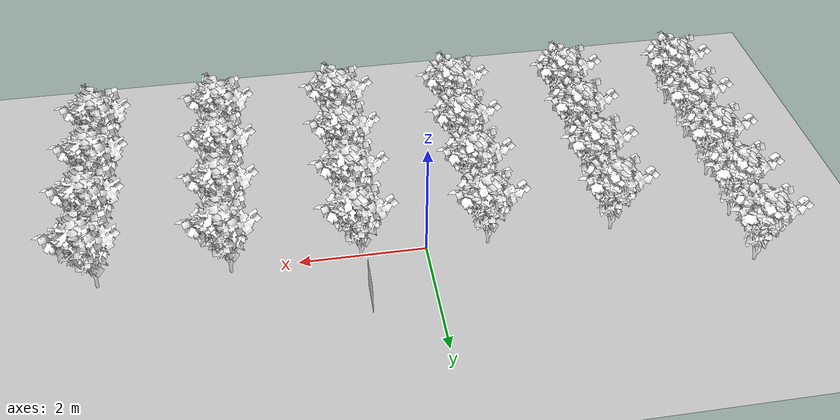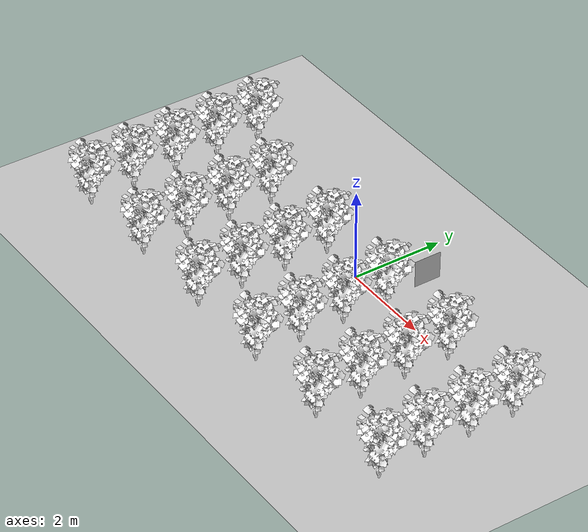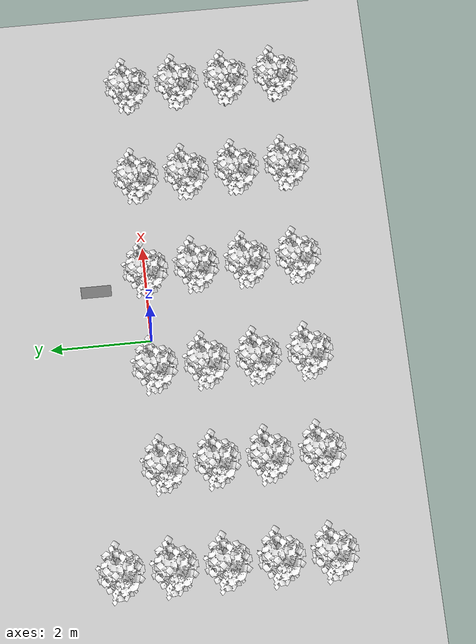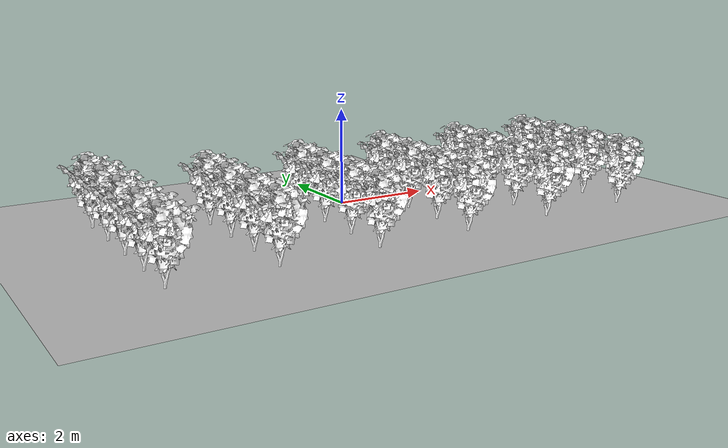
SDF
<sdf version="1.7">
 <world name="default">
  <include><uri>model://sun</uri></include>
  <model name="tree_0">
   <static>true</static>
   <link name="link">
    <visual name="trunk">
     <geometry><mesh><uri>model://meshes/Tree_1_Trunk.dae</uri></mesh></geometry>
     <material>
      <script>
       <uri>model://materials/scripts/</uri>
       <uri>model://materials/textures/</uri>
       <name>Vine/Bark</name>
      </script>
     </material>
    </visual>
    <visual name="leafa">
     <geometry><mesh><uri>model://meshes/Tree_1_Leaf_1.dae</uri></mesh></geometry>
     <material>
      <script>
       <uri>model://materials/scripts/</uri>
       <uri>model://materials/textures/</uri>
       <name>Vine/Leafa</name>
      </script>
     </material>
    </visual>
    <visual name="leafb">
     <geometry><mesh><uri>model://meshes/Tree_1_Leaf_2.dae</uri></mesh></geometry>
     <material>
      <script>
       <uri>model://materials/scripts/</uri>
       <uri>model://materials/textures/</uri>
       <name>Vine/Leafb</name>
      </script>
     </material>
    </visual>
    <visual name="leafc">
     <geometry><mesh><uri>model://meshes/Tree_1_Leaf_3.dae</uri></mesh></geometry>
     <material>
      <script>
       <uri>model://materials/scripts/</uri>
       <uri>model://materials/textures/</uri>
       <name>Vine/Leafc</name>
      </script>
     </material>
    </visual>
   </link>
   <pose>-5 -3 -0.3 0 0 0</pose>
  </model>
  <model name="tree_1">
   <static>true</static>
   <link name="link">
    <visual name="trunk">
     <geometry><mesh><uri>model://meshes/Tree_1_Trunk.dae</uri></mesh></geometry>
     <material>
      <script>
       <uri>model://materials/scripts/</uri>
       <uri>model://materials/textures/</uri>
       <name>Vine/Bark</name>
      </script>
     </material>
    </visual>
    <visual name="leafa">
     <geometry><mesh><uri>model://meshes/Tree_1_Leaf_1.dae</uri></mesh></geometry>
     <material>
      <script>
       <uri>model://materials/scripts/</uri>
       <uri>model://materials/textures/</uri>
       <name>Vine/Leafa</name>
      </script>
     </material>
    </visual>
    <visual name="leafb">
     <geometry><mesh><uri>model://meshes/Tree_1_Leaf_2.dae</uri></mesh></geometry>
     <material>
      <script>
       <uri>model://materials/scripts/</uri>
       <uri>model://materials/textures/</uri>
       <name>Vine/Leafb</name>
      </script>
     </material>
    </visual>
    <visual name="leafc">
     <geometry><mesh><uri>model://meshes/Tree_1_Leaf_3.dae</uri></mesh></geometry>
     <material>
      <script>
       <uri>model://materials/scripts/</uri>
       <uri>model://materials/textures/</uri>
       <name>Vine/Leafc</name>
      </script>
     </material>
    </visual>
   </link>
   <pose>-5 -2 -0.3 0 0 0</pose>
  </model>
  <model name="tree_2">
   <static>true</static>
   <link name="link">
    <visual name="trunk">
     <geometry><mesh><uri>model://meshes/Tree_1_Trunk.dae</uri></mesh></geometry>
     <material>
      <script>
       <uri>model://materials/scripts/</uri>
       <uri>model://materials/textures/</uri>
       <name>Vine/Bark</name>
      </script>
     </material>
    </visual>
    <visual name="leafa">
     <geometry><mesh><uri>model://meshes/Tree_1_Leaf_1.dae</uri></mesh></geometry>
     <material>
      <script>
       <uri>model://materials/scripts/</uri>
       <uri>model://materials/textures/</uri>
       <name>Vine/Leafa</name>
      </script>
     </material>
    </visual>
    <visual name="leafb">
     <geometry><mesh><uri>model://meshes/Tree_1_Leaf_2.dae</uri></mesh></geometry>
     <material>
      <script>
       <uri>model://materials/scripts/</uri>
       <uri>model://materials/textures/</uri>
       <name>Vine/Leafb</name>
      </script>
     </material>
    </visual>
    <visual name="leafc">
     <geometry><mesh><uri>model://meshes/Tree_1_Leaf_3.dae</uri></mesh></geometry>
     <material>
      <script>
       <uri>model://materials/scripts/</uri>
       <uri>model://materials/textures/</uri>
       <name>Vine/Leafc</name>
      </script>
     </material>
    </visual>
   </link>
   <pose>-5 -1 -0.3 0 0 0</pose>
  </model>
  <model name="tree_3">
   <static>true</static>
   <link name="link">
    <visual name="trunk">
     <geometry><mesh><uri>model://meshes/Tree_1_Trunk.dae</uri></mesh></geometry>
     <material>
      <script>
       <uri>model://materials/scripts/</uri>
       <uri>model://materials/textures/</uri>
       <name>Vine/Bark</name>
      </script>
     </material>
    </visual>
    <visual name="leafa">
     <geometry><mesh><uri>model://meshes/Tree_1_Leaf_1.dae</uri></mesh></geometry>
     <material>
      <script>
       <uri>model://materials/scripts/</uri>
       <uri>model://materials/textures/</uri>
       <name>Vine/Leafa</name>
      </script>
     </material>
    </visual>
    <visual name="leafb">
     <geometry><mesh><uri>model://meshes/Tree_1_Leaf_2.dae</uri></mesh></geometry>
     <material>
      <script>
       <uri>model://materials/scripts/</uri>
       <uri>model://materials/textures/</uri>
       <name>Vine/Leafb</name>
      </script>
     </material>
    </visual>
    <visual name="leafc">
     <geometry><mesh><uri>model://meshes/Tree_1_Leaf_3.dae</uri></mesh></geometry>
     <material>
      <script>
       <uri>model://materials/scripts/</uri>
       <uri>model://materials/textures/</uri>
       <name>Vine/Leafc</name>
      </script>
     </material>
    </visual>
   </link>
   <pose>-5 0 -0.3 0 0 0</pose>
  </model>
  <model name="tree_4">
   <static>true</static>
   <link name="link">
    <visual name="trunk">
     <geometry><mesh><uri>model://meshes/Tree_1_Trunk.dae</uri></mesh></geometry>
     <material>
      <script>
       <uri>model://materials/scripts/</uri>
       <uri>model://materials/textures/</uri>
       <name>Vine/Bark</name>
      </script>
     </material>
    </visual>
    <visual name="leafa">
     <geometry><mesh><uri>model://meshes/Tree_1_Leaf_1.dae</uri></mesh></geometry>
     <material>
      <script>
       <uri>model://materials/scripts/</uri>
       <uri>model://materials/textures/</uri>
       <name>Vine/Leafa</name>
      </script>
     </material>
    </visual>
    <visual name="leafb">
     <geometry><mesh><uri>model://meshes/Tree_1_Leaf_2.dae</uri></mesh></geometry>
     <material>
      <script>
       <uri>model://materials/scripts/</uri>
       <uri>model://materials/textures/</uri>
       <name>Vine/Leafb</name>
      </script>
     </material>
    </visual>
    <visual name="leafc">
     <geometry><mesh><uri>model://meshes/Tree_1_Leaf_3.dae</uri></mesh></geometry>
     <material>
      <script>
       <uri>model://materials/scripts/</uri>
       <uri>model://materials/textures/</uri>
       <name>Vine/Leafc</name>
      </script>
     </material>
    </visual>
   </link>
   <pose>-5 1 -0.3 0 0 0</pose>
  </model>
  <model name="tree_13">
   <static>true</static>
   <link name="link">
    <visual name="trunk">
     <geometry><mesh><uri>model://meshes/Tree_1_Trunk.dae</uri></mesh></geometry>
     <material>
      <script>
       <uri>model://materials/scripts/</uri>
       <uri>model://materials/textures/</uri>
       <name>Vine/Bark</name>
      </script>
     </material>
    </visual>
    <visual name="leafa">
     <geometry><mesh><uri>model://meshes/Tree_1_Leaf_1.dae</uri></mesh></geometry>
     <material>
      <script>
       <uri>model://materials/scripts/</uri>
       <uri>model://materials/textures/</uri>
       <name>Vine/Leafa</name>
      </script>
     </material>
    </visual>
    <visual name="leafb">
     <geometry><mesh><uri>model://meshes/Tree_1_Leaf_2.dae</uri></mesh></geometry>
     <material>
      <script>
       <uri>model://materials/scripts/</uri>
       <uri>model://materials/textures/</uri>
       <name>Vine/Leafb</name>
      </script>
     </material>
    </visual>
    <visual name="leafc">
     <geometry><mesh><uri>model://meshes/Tree_1_Leaf_3.dae</uri></mesh></geometry>
     <material>
      <script>
       <uri>model://materials/scripts/</uri>
       <uri>model://materials/textures/</uri>
       <name>Vine/Leafc</name>
      </script>
     </material>
    </visual>
   </link>
   <pose>-3 -3 -0.3 0 0 0</pose>
  </model>
  <model name="tree_14">
   <static>true</static>
   <link name="link">
    <visual name="trunk">
     <geometry><mesh><uri>model://meshes/Tree_1_Trunk.dae</uri></mesh></geometry>
     <material>
      <script>
       <uri>model://materials/scripts/</uri>
       <uri>model://materials/textures/</uri>
       <name>Vine/Bark</name>
      </script>
     </material>
    </visual>
    <visual name="leafa">
     <geometry><mesh><uri>model://meshes/Tree_1_Leaf_1.dae</uri></mesh></geometry>
     <material>
      <script>
       <uri>model://materials/scripts/</uri>
       <uri>model://materials/textures/</uri>
       <name>Vine/Leafa</name>
      </script>
     </material>
    </visual>
    <visual name="leafb">
     <geometry><mesh><uri>model://meshes/Tree_1_Leaf_2.dae</uri></mesh></geometry>
     <material>
      <script>
       <uri>model://materials/scripts/</uri>
       <uri>model://materials/textures/</uri>
       <name>Vine/Leafb</name>
      </script>
     </material>
    </visual>
    <visual name="leafc">
     <geometry><mesh><uri>model://meshes/Tree_1_Leaf_3.dae</uri></mesh></geometry>
     <material>
      <script>
       <uri>model://materials/scripts/</uri>
       <uri>model://materials/textures/</uri>
       <name>Vine/Leafc</name>
      </script>
     </material>
    </visual>
   </link>
   <pose>-3 -2 -0.3 0 0 0</pose>
  </model>
  <model name="tree_15">
   <static>true</static>
   <link name="link">
    <visual name="trunk">
     <geometry><mesh><uri>model://meshes/Tree_1_Trunk.dae</uri></mesh></geometry>
     <material>
      <script>
       <uri>model://materials/scripts/</uri>
       <uri>model://materials/textures/</uri>
       <name>Vine/Bark</name>
      </script>
     </material>
    </visual>
    <visual name="leafa">
     <geometry><mesh><uri>model://meshes/Tree_1_Leaf_1.dae</uri></mesh></geometry>
     <material>
      <script>
       <uri>model://materials/scripts/</uri>
       <uri>model://materials/textures/</uri>
       <name>Vine/Leafa</name>
      </script>
     </material>
    </visual>
    <visual name="leafb">
     <geometry><mesh><uri>model://meshes/Tree_1_Leaf_2.dae</uri></mesh></geometry>
     <material>
      <script>
       <uri>model://materials/scripts/</uri>
       <uri>model://materials/textures/</uri>
       <name>Vine/Leafb</name>
      </script>
     </material>
    </visual>
    <visual name="leafc">
     <geometry><mesh><uri>model://meshes/Tree_1_Leaf_3.dae</uri></mesh></geometry>
     <material>
      <script>
       <uri>model://materials/scripts/</uri>
       <uri>model://materials/textures/</uri>
       <name>Vine/Leafc</name>
      </script>
     </material>
    </visual>
   </link>
   <pose>-3 -1 -0.3 0 0 0</pose>
  </model>
  <model name="tree_16">
   <static>true</static>
   <link name="link">
    <visual name="trunk">
     <geometry><mesh><uri>model://meshes/Tree_1_Trunk.dae</uri></mesh></geometry>
     <material>
      <script>
       <uri>model://materials/scripts/</uri>
       <uri>model://materials/textures/</uri>
       <name>Vine/Bark</name>
      </script>
     </material>
    </visual>
    <visual name="leafa">
     <geometry><mesh><uri>model://meshes/Tree_1_Leaf_1.dae</uri></mesh></geometry>
     <material>
      <script>
       <uri>model://materials/scripts/</uri>
       <uri>model://materials/textures/</uri>
       <name>Vine/Leafa</name>
      </script>
     </material>
    </visual>
    <visual name="leafb">
     <geometry><mesh><uri>model://meshes/Tree_1_Leaf_2.dae</uri></mesh></geometry>
     <material>
      <script>
       <uri>model://materials/scripts/</uri>
       <uri>model://materials/textures/</uri>
       <name>Vine/Leafb</name>
      </script>
     </material>
    </visual>
    <visual name="leafc">
     <geometry><mesh><uri>model://meshes/Tree_1_Leaf_3.dae</uri></mesh></geometry>
     <material>
      <script>
       <uri>model://materials/scripts/</uri>
       <uri>model://materials/textures/</uri>
       <name>Vine/Leafc</name>
      </script>
     </material>
    </visual>
   </link>
   <pose>-3 0 -0.3 0 0 0</pose>
  </model>
  <model name="tree_26">
   <static>true</static>
   <link name="link">
    <visual name="trunk">
     <geometry><mesh><uri>model://meshes/Tree_1_Trunk.dae</uri></mesh></geometry>
     <material>
      <script>
       <uri>model://materials/scripts/</uri>
       <uri>model://materials/textures/</uri>
       <name>Vine/Bark</name>
      </script>
     </material>
    </visual>
    <visual name="leafa">
     <geometry><mesh><uri>model://meshes/Tree_1_Leaf_1.dae</uri></mesh></geometry>
     <material>
      <script>
       <uri>model://materials/scripts/</uri>
       <uri>model://materials/textures/</uri>
       <name>Vine/Leafa</name>
      </script>
     </material>
    </visual>
    <visual name="leafb">
     <geometry><mesh><uri>model://meshes/Tree_1_Leaf_2.dae</uri></mesh></geometry>
     <material>
      <script>
       <uri>model://materials/scripts/</uri>
       <uri>model://materials/textures/</uri>
       <name>Vine/Leafb</name>
      </script>
     </material>
    </visual>
    <visual name="leafc">
     <geometry><mesh><uri>model://meshes/Tree_1_Leaf_3.dae</uri></mesh></geometry>
     <material>
      <script>
       <uri>model://materials/scripts/</uri>
       <uri>model://materials/textures/</uri>
       <name>Vine/Leafc</name>
      </script>
     </material>
    </visual>
   </link>
   <pose>-1 -3 -0.3 0 0 0</pose>
  </model>
  <model name="tree_27">
   <static>true</static>
   <link name="link">
    <visual name="trunk">
     <geometry><mesh><uri>model://meshes/Tree_1_Trunk.dae</uri></mesh></geometry>
     <material>
      <script>
       <uri>model://materials/scripts/</uri>
       <uri>model://materials/textures/</uri>
       <name>Vine/Bark</name>
      </script>
     </material>
    </visual>
    <visual name="leafa">
     <geometry><mesh><uri>model://meshes/Tree_1_Leaf_1.dae</uri></mesh></geometry>
     <material>
      <script>
       <uri>model://materials/scripts/</uri>
       <uri>model://materials/textures/</uri>
       <name>Vine/Leafa</name>
      </script>
     </material>
    </visual>
    <visual name="leafb">
     <geometry><mesh><uri>model://meshes/Tree_1_Leaf_2.dae</uri></mesh></geometry>
     <material>
      <script>
       <uri>model://materials/scripts/</uri>
       <uri>model://materials/textures/</uri>
       <name>Vine/Leafb</name>
      </script>
     </material>
    </visual>
    <visual name="leafc">
     <geometry><mesh><uri>model://meshes/Tree_1_Leaf_3.dae</uri></mesh></geometry>
     <material>
      <script>
       <uri>model://materials/scripts/</uri>
       <uri>model://materials/textures/</uri>
       <name>Vine/Leafc</name>
      </script>
     </material>
    </visual>
   </link>
   <pose>-1 -2 -0.3 0 0 0</pose>
  </model>
  <model name="tree_28">
   <static>true</static>
   <link name="link">
    <visual name="trunk">
     <geometry><mesh><uri>model://meshes/Tree_1_Trunk.dae</uri></mesh></geometry>
     <material>
      <script>
       <uri>model://materials/scripts/</uri>
       <uri>model://materials/textures/</uri>
       <name>Vine/Bark</name>
      </script>
     </material>
    </visual>
    <visual name="leafa">
     <geometry><mesh><uri>model://meshes/Tree_1_Leaf_1.dae</uri></mesh></geometry>
     <material>
      <script>
       <uri>model://materials/scripts/</uri>
       <uri>model://materials/textures/</uri>
       <name>Vine/Leafa</name>
      </script>
     </material>
    </visual>
    <visual name="leafb">
     <geometry><mesh><uri>model://meshes/Tree_1_Leaf_2.dae</uri></mesh></geometry>
     <material>
      <script>
       <uri>model://materials/scripts/</uri>
       <uri>model://materials/textures/</uri>
       <name>Vine/Leafb</name>
      </script>
     </material>
    </visual>
    <visual name="leafc">
     <geometry><mesh><uri>model://meshes/Tree_1_Leaf_3.dae</uri></mesh></geometry>
     <material>
      <script>
       <uri>model://materials/scripts/</uri>
       <uri>model://materials/textures/</uri>
       <name>Vine/Leafc</name>
      </script>
     </material>
    </visual>
   </link>
   <pose>-1 -1 -0.3 0 0 0</pose>
  </model>
  <model name="tree_29">
   <static>true</static>
   <link name="link">
    <visual name="trunk">
     <geometry><mesh><uri>model://meshes/Tree_1_Trunk.dae</uri></mesh></geometry>
     <material>
      <script>
       <uri>model://materials/scripts/</uri>
       <uri>model://materials/textures/</uri>
       <name>Vine/Bark</name>
      </script>
     </material>
    </visual>
    <visual name="leafa">
     <geometry><mesh><uri>model://meshes/Tree_1_Leaf_1.dae</uri></mesh></geometry>
     <material>
      <script>
       <uri>model://materials/scripts/</uri>
       <uri>model://materials/textures/</uri>
       <name>Vine/Leafa</name>
      </script>
     </material>
    </visual>
    <visual name="leafb">
     <geometry><mesh><uri>model://meshes/Tree_1_Leaf_2.dae</uri></mesh></geometry>
     <material>
      <script>
       <uri>model://materials/scripts/</uri>
       <uri>model://materials/textures/</uri>
       <name>Vine/Leafb</name>
      </script>
     </material>
    </visual>
    <visual name="leafc">
     <geometry><mesh><uri>model://meshes/Tree_1_Leaf_3.dae</uri></mesh></geometry>
     <material>
      <script>
       <uri>model://materials/scripts/</uri>
       <uri>model://materials/textures/</uri>
       <name>Vine/Leafc</name>
      </script>
     </material>
    </visual>
   </link>
   <pose>-1 0 -0.3 0 0 0</pose>
  </model>
  <model name="tree_39">
   <static>true</static>
   <link name="link">
    <visual name="trunk">
     <geometry><mesh><uri>model://meshes/Tree_1_Trunk.dae</uri></mesh></geometry>
     <material>
      <script>
       <uri>model://materials/scripts/</uri>
       <uri>model://materials/textures/</uri>
       <name>Vine/Bark</name>
      </script>
     </material>
    </visual>
    <visual name="leafa">
     <geometry><mesh><uri>model://meshes/Tree_1_Leaf_1.dae</uri></mesh></geometry>
     <material>
      <script>
       <uri>model://materials/scripts/</uri>
       <uri>model://materials/textures/</uri>
       <name>Vine/Leafa</name>
      </script>
     </material>
    </visual>
    <visual name="leafb">
     <geometry><mesh><uri>model://meshes/Tree_1_Leaf_2.dae</uri></mesh></geometry>
     <material>
      <script>
       <uri>model://materials/scripts/</uri>
       <uri>model://materials/textures/</uri>
       <name>Vine/Leafb</name>
      </script>
     </material>
    </visual>
    <visual name="leafc">
     <geometry><mesh><uri>model://meshes/Tree_1_Leaf_3.dae</uri></mesh></geometry>
     <material>
      <script>
       <uri>model://materials/scripts/</uri>
       <uri>model://materials/textures/</uri>
       <name>Vine/Leafc</name>
      </script>
     </material>
    </visual>
   </link>
   <pose>1 -3 -0.3 0 0 0</pose>
  </model>
  <model name="tree_40">
   <static>true</static>
   <link name="link">
    <visual name="trunk">
     <geometry><mesh><uri>model://meshes/Tree_1_Trunk.dae</uri></mesh></geometry>
     <material>
      <script>
       <uri>model://materials/scripts/</uri>
       <uri>model://materials/textures/</uri>
       <name>Vine/Bark</name>
      </script>
     </material>
    </visual>
    <visual name="leafa">
     <geometry><mesh><uri>model://meshes/Tree_1_Leaf_1.dae</uri></mesh></geometry>
     <material>
      <script>
       <uri>model://materials/scripts/</uri>
       <uri>model://materials/textures/</uri>
       <name>Vine/Leafa</name>
      </script>
     </material>
    </visual>
    <visual name="leafb">
     <geometry><mesh><uri>model://meshes/Tree_1_Leaf_2.dae</uri></mesh></geometry>
     <material>
      <script>
       <uri>model://materials/scripts/</uri>
       <uri>model://materials/textures/</uri>
       <name>Vine/Leafb</name>
      </script>
     </material>
    </visual>
    <visual name="leafc">
     <geometry><mesh><uri>model://meshes/Tree_1_Leaf_3.dae</uri></mesh></geometry>
     <material>
      <script>
       <uri>model://materials/scripts/</uri>
       <uri>model://materials/textures/</uri>
       <name>Vine/Leafc</name>
      </script>
     </material>
    </visual>
   </link>
   <pose>1 -2 -0.3 0 0 0</pose>
  </model>
  <model name="tree_41">
   <static>true</static>
   <link name="link">
    <visual name="trunk">
     <geometry><mesh><uri>model://meshes/Tree_1_Trunk.dae</uri></mesh></geometry>
     <material>
      <script>
       <uri>model://materials/scripts/</uri>
       <uri>model://materials/textures/</uri>
       <name>Vine/Bark</name>
      </script>
     </material>
    </visual>
    <visual name="leafa">
     <geometry><mesh><uri>model://meshes/Tree_1_Leaf_1.dae</uri></mesh></geometry>
     <material>
      <script>
       <uri>model://materials/scripts/</uri>
       <uri>model://materials/textures/</uri>
       <name>Vine/Leafa</name>
      </script>
     </material>
    </visual>
    <visual name="leafb">
     <geometry><mesh><uri>model://meshes/Tree_1_Leaf_2.dae</uri></mesh></geometry>
     <material>
      <script>
       <uri>model://materials/scripts/</uri>
       <uri>model://materials/textures/</uri>
       <name>Vine/Leafb</name>
      </script>
     </material>
    </visual>
    <visual name="leafc">
     <geometry><mesh><uri>model://meshes/Tree_1_Leaf_3.dae</uri></mesh></geometry>
     <material>
      <script>
       <uri>model://materials/scripts/</uri>
       <uri>model://materials/textures/</uri>
       <name>Vine/Leafc</name>
      </script>
     </material>
    </visual>
   </link>
   <pose>1 -1 -0.3 0 0 0</pose>
  </model>
  <model name="tree_42">
   <static>true</static>
   <link name="link">
    <visual name="trunk">
     <geometry><mesh><uri>model://meshes/Tree_1_Trunk.dae</uri></mesh></geometry>
     <material>
      <script>
       <uri>model://materials/scripts/</uri>
       <uri>model://materials/textures/</uri>
       <name>Vine/Bark</name>
      </script>
     </material>
    </visual>
    <visual name="leafa">
     <geometry><mesh><uri>model://meshes/Tree_1_Leaf_1.dae</uri></mesh></geometry>
     <material>
      <script>
       <uri>model://materials/scripts/</uri>
       <uri>model://materials/textures/</uri>
       <name>Vine/Leafa</name>
      </script>
     </material>
    </visual>
    <visual name="leafb">
     <geometry><mesh><uri>model://meshes/Tree_1_Leaf_2.dae</uri></mesh></geometry>
     <material>
      <script>
       <uri>model://materials/scripts/</uri>
       <uri>model://materials/textures/</uri>
       <name>Vine/Leafb</name>
      </script>
     </material>
    </visual>
    <visual name="leafc">
     <geometry><mesh><uri>model://meshes/Tree_1_Leaf_3.dae</uri></mesh></geometry>
     <material>
      <script>
       <uri>model://materials/scripts/</uri>
       <uri>model://materials/textures/</uri>
       <name>Vine/Leafc</name>
      </script>
     </material>
    </visual>
   </link>
   <pose>1 0 -0.3 0 0 0</pose>
  </model>
  <model name="tree_51">
   <static>true</static>
   <link name="link">
    <visual name="trunk">
     <geometry><mesh><uri>model://meshes/Tree_1_Trunk.dae</uri></mesh></geometry>
     <material>
      <script>
       <uri>model://materials/scripts/</uri>
       <uri>model://materials/textures/</uri>
       <name>Vine/Bark</name>
      </script>
     </material>
    </visual>
    <visual name="leafa">
     <geometry><mesh><uri>model://meshes/Tree_1_Leaf_1.dae</uri></mesh></geometry>
     <material>
      <script>
       <uri>model://materials/scripts/</uri>
       <uri>model://materials/textures/</uri>
       <name>Vine/Leafa</name>
      </script>
     </material>
    </visual>
    <visual name="leafb">
     <geometry><mesh><uri>model://meshes/Tree_1_Leaf_2.dae</uri></mesh></geometry>
     <material>
      <script>
       <uri>model://materials/scripts/</uri>
       <uri>model://materials/textures/</uri>
       <name>Vine/Leafb</name>
      </script>
     </material>
    </visual>
    <visual name="leafc">
     <geometry><mesh><uri>model://meshes/Tree_1_Leaf_3.dae</uri></mesh></geometry>
     <material>
      <script>
       <uri>model://materials/scripts/</uri>
       <uri>model://materials/textures/</uri>
       <name>Vine/Leafc</name>
      </script>
     </material>
    </visual>
   </link>
   <pose>3 -3 -0.3 0 0 0</pose>
  </model>
  <model name="tree_52">
   <static>true</static>
   <link name="link">
    <visual name="trunk">
     <geometry><mesh><uri>model://meshes/Tree_1_Trunk.dae</uri></mesh></geometry>
     <material>
      <script>
       <uri>model://materials/scripts/</uri>
       <uri>model://materials/textures/</uri>
       <name>Vine/Bark</name>
      </script>
     </material>
    </visual>
    <visual name="leafa">
     <geometry><mesh><uri>model://meshes/Tree_1_Leaf_1.dae</uri></mesh></geometry>
     <material>
      <script>
       <uri>model://materials/scripts/</uri>
       <uri>model://materials/textures/</uri>
       <name>Vine/Leafa</name>
      </script>
     </material>
    </visual>
    <visual name="leafb">
     <geometry><mesh><uri>model://meshes/Tree_1_Leaf_2.dae</uri></mesh></geometry>
     <material>
      <script>
       <uri>model://materials/scripts/</uri>
       <uri>model://materials/textures/</uri>
       <name>Vine/Leafb</name>
      </script>
     </material>
    </visual>
    <visual name="leafc">
     <geometry><mesh><uri>model://meshes/Tree_1_Leaf_3.dae</uri></mesh></geometry>
     <material>
      <script>
       <uri>model://materials/scripts/</uri>
       <uri>model://materials/textures/</uri>
       <name>Vine/Leafc</name>
      </script>
     </material>
    </visual>
   </link>
   <pose>3 -2 -0.3 0 0 0</pose>
  </model>
  <model name="tree_53">
   <static>true</static>
   <link name="link">
    <visual name="trunk">
     <geometry><mesh><uri>model://meshes/Tree_1_Trunk.dae</uri></mesh></geometry>
     <material>
      <script>
       <uri>model://materials/scripts/</uri>
       <uri>model://materials/textures/</uri>
       <name>Vine/Bark</name>
      </script>
     </material>
    </visual>
    <visual name="leafa">
     <geometry><mesh><uri>model://meshes/Tree_1_Leaf_1.dae</uri></mesh></geometry>
     <material>
      <script>
       <uri>model://materials/scripts/</uri>
       <uri>model://materials/textures/</uri>
       <name>Vine/Leafa</name>
      </script>
     </material>
    </visual>
    <visual name="leafb">
     <geometry><mesh><uri>model://meshes/Tree_1_Leaf_2.dae</uri></mesh></geometry>
     <material>
      <script>
       <uri>model://materials/scripts/</uri>
       <uri>model://materials/textures/</uri>
       <name>Vine/Leafb</name>
      </script>
     </material>
    </visual>
    <visual name="leafc">
     <geometry><mesh><uri>model://meshes/Tree_1_Leaf_3.dae</uri></mesh></geometry>
     <material>
      <script>
       <uri>model://materials/scripts/</uri>
       <uri>model://materials/textures/</uri>
       <name>Vine/Leafc</name>
      </script>
     </material>
    </visual>
   </link>
   <pose>3 -1 -0.3 0 0 0</pose>
  </model>
  <model name="tree_54">
   <static>true</static>
   <link name="link">
    <visual name="trunk">
     <geometry><mesh><uri>model://meshes/Tree_1_Trunk.dae</uri></mesh></geometry>
     <material>
      <script>
       <uri>model://materials/scripts/</uri>
       <uri>model://materials/textures/</uri>
       <name>Vine/Bark</name>
      </script>
     </material>
    </visual>
    <visual name="leafa">
     <geometry><mesh><uri>model://meshes/Tree_1_Leaf_1.dae</uri></mesh></geometry>
     <material>
      <script>
       <uri>model://materials/scripts/</uri>
       <uri>model://materials/textures/</uri>
       <name>Vine/Leafa</name>
      </script>
     </material>
    </visual>
    <visual name="leafb">
     <geometry><mesh><uri>model://meshes/Tree_1_Leaf_2.dae</uri></mesh></geometry>
     <material>
      <script>
       <uri>model://materials/scripts/</uri>
       <uri>model://materials/textures/</uri>
       <name>Vine/Leafb</name>
      </script>
     </material>
    </visual>
    <visual name="leafc">
     <geometry><mesh><uri>model://meshes/Tree_1_Leaf_3.dae</uri></mesh></geometry>
     <material>
      <script>
       <uri>model://materials/scripts/</uri>
       <uri>model://materials/textures/</uri>
       <name>Vine/Leafc</name>
      </script>
     </material>
    </visual>
   </link>
   <pose>3 0 -0.3 0 0 0</pose>
  </model>
  <model name="tree_64">
   <static>true</static>
   <link name="link">
    <visual name="trunk">
     <geometry><mesh><uri>model://meshes/Tree_1_Trunk.dae</uri></mesh></geometry>
     <material>
      <script>
       <uri>model://materials/scripts/</uri>
       <uri>model://materials/textures/</uri>
       <name>Vine/Bark</name>
      </script>
     </material>
    </visual>
    <visual name="leafa">
     <geometry><mesh><uri>model://meshes/Tree_1_Leaf_1.dae</uri></mesh></geometry>
     <material>
      <script>
       <uri>model://materials/scripts/</uri>
       <uri>model://materials/textures/</uri>
       <name>Vine/Leafa</name>
      </script>
     </material>
    </visual>
    <visual name="leafb">
     <geometry><mesh><uri>model://meshes/Tree_1_Leaf_2.dae</uri></mesh></geometry>
     <material>
      <script>
       <uri>model://materials/scripts/</uri>
       <uri>model://materials/textures/</uri>
       <name>Vine/Leafb</name>
      </script>
     </material>
    </visual>
    <visual name="leafc">
     <geometry><mesh><uri>model://meshes/Tree_1_Leaf_3.dae</uri></mesh></geometry>
     <material>
      <script>
       <uri>model://materials/scripts/</uri>
       <uri>model://materials/textures/</uri>
       <name>Vine/Leafc</name>
      </script>
     </material>
    </visual>
   </link>
   <pose>5 -3 -0.3 0 0 0</pose>
  </model>
  <model name="tree_65">
   <static>true</static>
   <link name="link">
    <visual name="trunk">
     <geometry><mesh><uri>model://meshes/Tree_1_Trunk.dae</uri></mesh></geometry>
     <material>
      <script>
       <uri>model://materials/scripts/</uri>
       <uri>model://materials/textures/</uri>
       <name>Vine/Bark</name>
      </script>
     </material>
    </visual>
    <visual name="leafa">
     <geometry><mesh><uri>model://meshes/Tree_1_Leaf_1.dae</uri></mesh></geometry>
     <material>
      <script>
       <uri>model://materials/scripts/</uri>
       <uri>model://materials/textures/</uri>
       <name>Vine/Leafa</name>
      </script>
     </material>
    </visual>
    <visual name="leafb">
     <geometry><mesh><uri>model://meshes/Tree_1_Leaf_2.dae</uri></mesh></geometry>
     <material>
      <script>
       <uri>model://materials/scripts/</uri>
       <uri>model://materials/textures/</uri>
       <name>Vine/Leafb</name>
      </script>
     </material>
    </visual>
    <visual name="leafc">
     <geometry><mesh><uri>model://meshes/Tree_1_Leaf_3.dae</uri></mesh></geometry>
     <material>
      <script>
       <uri>model://materials/scripts/</uri>
       <uri>model://materials/textures/</uri>
       <name>Vine/Leafc</name>
      </script>
     </material>
    </visual>
   </link>
   <pose>5 -2 -0.3 0 0 0</pose>
  </model>
  <model name="tree_66">
   <static>true</static>
   <link name="link">
    <visual name="trunk">
     <geometry><mesh><uri>model://meshes/Tree_1_Trunk.dae</uri></mesh></geometry>
     <material>
      <script>
       <uri>model://materials/scripts/</uri>
       <uri>model://materials/textures/</uri>
       <name>Vine/Bark</name>
      </script>
     </material>
    </visual>
    <visual name="leafa">
     <geometry><mesh><uri>model://meshes/Tree_1_Leaf_1.dae</uri></mesh></geometry>
     <material>
      <script>
       <uri>model://materials/scripts/</uri>
       <uri>model://materials/textures/</uri>
       <name>Vine/Leafa</name>
      </script>
     </material>
    </visual>
    <visual name="leafb">
     <geometry><mesh><uri>model://meshes/Tree_1_Leaf_2.dae</uri></mesh></geometry>
     <material>
      <script>
       <uri>model://materials/scripts/</uri>
       <uri>model://materials/textures/</uri>
       <name>Vine/Leafb</name>
      </script>
     </material>
    </visual>
    <visual name="leafc">
     <geometry><mesh><uri>model://meshes/Tree_1_Leaf_3.dae</uri></mesh></geometry>
     <material>
      <script>
       <uri>model://materials/scripts/</uri>
       <uri>model://materials/textures/</uri>
       <name>Vine/Leafc</name>
      </script>
     </material>
    </visual>
   </link>
   <pose>5 -1 -0.3 0 0 0</pose>
  </model>
  <model name="tree_67">
   <static>true</static>
   <link name="link">
    <visual name="trunk">
     <geometry><mesh><uri>model://meshes/Tree_1_Trunk.dae</uri></mesh></geometry>
     <material>
      <script>
       <uri>model://materials/scripts/</uri>
       <uri>model://materials/textures/</uri>
       <name>Vine/Bark</name>
      </script>
     </material>
    </visual>
    <visual name="leafa">
     <geometry><mesh><uri>model://meshes/Tree_1_Leaf_1.dae</uri></mesh></geometry>
     <material>
      <script>
       <uri>model://materials/scripts/</uri>
       <uri>model://materials/textures/</uri>
       <name>Vine/Leafa</name>
      </script>
     </material>
    </visual>
    <visual name="leafb">
     <geometry><mesh><uri>model://meshes/Tree_1_Leaf_2.dae</uri></mesh></geometry>
     <material>
      <script>
       <uri>model://materials/scripts/</uri>
       <uri>model://materials/textures/</uri>
       <name>Vine/Leafb</name>
      </script>
     </material>
    </visual>
    <visual name="leafc">
     <geometry><mesh><uri>model://meshes/Tree_1_Leaf_3.dae</uri></mesh></geometry>
     <material>
      <script>
       <uri>model://materials/scripts/</uri>
       <uri>model://materials/textures/</uri>
       <name>Vine/Leafc</name>
      </script>
     </material>
    </visual>
   </link>
   <pose>5 0 -0.3 0 0 0</pose>
  </model>
  <model name="ground_plane">
   <static>true</static>
   <link name="link">
    <collision name="collision">
     <geometry><plane><normal>0 0 1</normal><size>30 30</size></plane></geometry>
    </collision>
    <visual name="visual">
     <geometry><plane><normal>0 0 1</normal><size>30 30</size></plane></geometry>
     <material>
      <script><uri>model://materials/scripts/</uri><uri>model://materials/textures/</uri><name>Plane</name></script>
     </material>
    </visual>
   </link>
  </model>
  <model name="Apriltag36_11_00000_78">
   <link name="main">
    <pose>1 1 0.4 0 1.57079632679 0</pose>
    <visual name="main_Visual">
     <geometry><box><size>0.6 0.6 0.0001</size></box></geometry>
     <material>
      <script>
       <uri>model://materials/scripts/</uri>
       <uri>model://materials/textures/</uri>
       <name>Obj/Apriltag36_11_00000</name>
      </script>
     </material>
    </visual>
   </link>
   <static>1</static>
  </model>
 </world>
</sdf>
